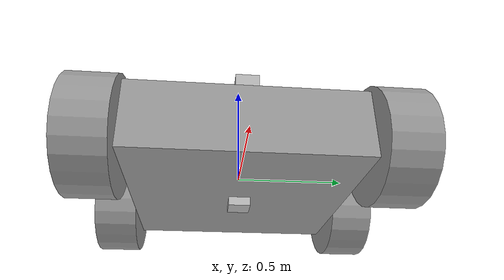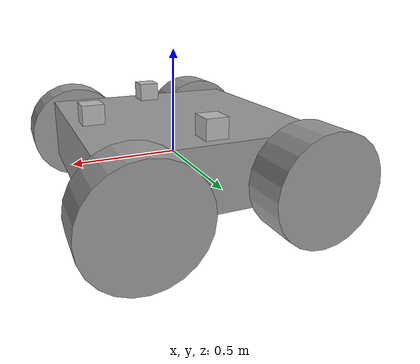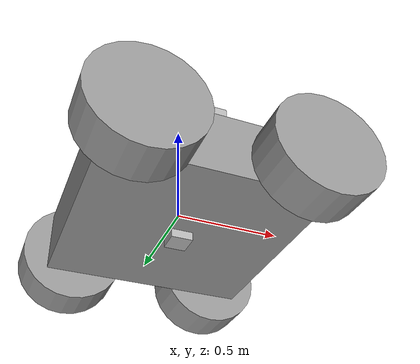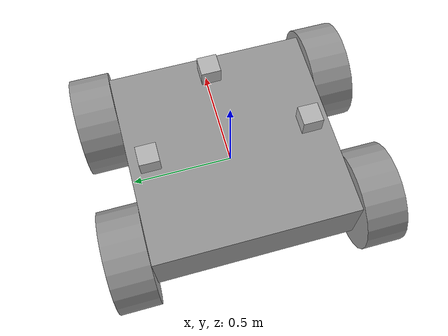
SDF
<?xml version='1.0'?>
<sdf version='1.6'>
  <model name='jhonny5'>
    <link name='base_frame'>
      <pose frame=''>0 5e-06 0.04 0 -0 0</pose>
      <inertial>
        <mass>20</mass>
        <inertia>
          <ixx>0</ixx>
          <ixy>0</ixy>
          <ixz>0</ixz>
          <iyy>0</iyy>
          <iyz>0</iyz>
          <izz>0</izz>
        </inertia>
        <pose frame=''>0 0 0 0 -0 0</pose>
      </inertial>
      <gravity>1</gravity>
      <self_collide>0</self_collide>
      <kinematic>0</kinematic>
      <visual name='visual'>
        <pose frame=''>0 0 0 0 -0 0</pose>
        <geometry>
          <box>
            <size>1 1 0.3</size>
          </box>
        </geometry>
        <material>
          <lighting>1</lighting>
          <script>
            <uri>file://media/materials/scripts/gazebo.material</uri>
            <name>Gazebo/Grey</name>
          </script>
          <ambient>0.3 0.3 0.3 1</ambient>
          <diffuse>0.7 0.7 0.7 1</diffuse>
          <specular>0.01 0.01 0.01 1</specular>
          <emissive>0 0 0 1</emissive>
          <shader type='vertex'>
            <normal_map>__default__</normal_map>
          </shader>
        </material>
        <cast_shadows>1</cast_shadows>
        <transparency>0</transparency>
      </visual>
      <collision name='collision'>
        <laser_retro>0</laser_retro>
        <max_contacts>10</max_contacts>
        <pose frame=''>0 0 0 0 -0 0</pose>
        <geometry>
          <box>
            <size>1 1 0.3</size>
          </box>
        </geometry>
        <surface>
          <friction>
            <ode>
              <mu>1</mu>
              <mu2>1</mu2>
              <fdir1>0 0 0</fdir1>
              <slip1>0</slip1>
              <slip2>0</slip2>
            </ode>
            <torsional>
              <coefficient>1</coefficient>
              <patch_radius>0</patch_radius>
              <surface_radius>0</surface_radius>
              <use_patch_radius>1</use_patch_radius>
              <ode>
                <slip>0</slip>
              </ode>
            </torsional>
          </friction>
          <bounce>
            <restitution_coefficient>0</restitution_coefficient>
            <threshold>1e+06</threshold>
          </bounce>
          <contact>
            <collide_without_contact>0</collide_without_contact>
            <collide_without_contact_bitmask>1</collide_without_contact_bitmask>
            <collide_bitmask>1</collide_bitmask>
            <ode>
              <soft_cfm>0</soft_cfm>
              <soft_erp>0.2</soft_erp>
              <kp>1e+13</kp>
              <kd>1</kd>
              <max_vel>0.01</max_vel>
              <min_depth>0</min_depth>
            </ode>
            <bullet>
              <split_impulse>1</split_impulse>
              <split_impulse_penetration_threshold>-0.01</split_impulse_penetration_threshold>
              <soft_cfm>0</soft_cfm>
              <soft_erp>0.2</soft_erp>
              <kp>1e+13</kp>
              <kd>1</kd>
            </bullet>
          </contact>
        </surface>
      </collision>
    </link>
    <link name='front_left_wheel'>
      <pose frame=''>0.375 0.6 0 1.5707 -0 0</pose>
      <inertial>
        <mass>0.01</mass>
        <inertia>
          <ixx>0</ixx>
          <ixy>0</ixy>
          <ixz>0</ixz>
          <iyy>0</iyy>
          <iyz>0</iyz>
          <izz>0</izz>
        </inertia>
        <pose frame=''>0 0 0 0 -0 0</pose>
      </inertial>
      <gravity>1</gravity>
      <self_collide>0</self_collide>
      <kinematic>0</kinematic>
      <visual name='visual'>
        <pose frame=''>0 0 0 0 -0 0</pose>
        <geometry>
          <cylinder>
            <radius>0.25</radius>
            <length>0.2</length>
          </cylinder>
        </geometry>
        <material>
          <lighting>1</lighting>
          <script>
            <uri>file://media/materials/scripts/gazebo.material</uri>
            <name>Gazebo/Grey</name>
          </script>
          <ambient>0.3 0.3 0.3 1</ambient>
          <diffuse>0.7 0.7 0.7 1</diffuse>
          <specular>0.01 0.01 0.01 1</specular>
          <emissive>0 0 0 1</emissive>
          <shader type='vertex'>
            <normal_map>__default__</normal_map>
          </shader>
        </material>
        <cast_shadows>1</cast_shadows>
        <transparency>0</transparency>
      </visual>
      <collision name='collision'>
        <laser_retro>0</laser_retro>
        <max_contacts>10</max_contacts>
        <pose frame=''>0 0 0 0 -0 0</pose>
        <geometry>
          <cylinder>
            <radius>0.25</radius>
            <length>0.2</length>
          </cylinder>
        </geometry>
        <surface>
          <friction>
            <ode>
              <mu>1</mu>
              <mu2>1</mu2>
              <fdir1>0 0 0</fdir1>
              <slip1>0</slip1>
              <slip2>0</slip2>
            </ode>
            <torsional>
              <coefficient>1</coefficient>
              <patch_radius>0</patch_radius>
              <surface_radius>0</surface_radius>
              <use_patch_radius>1</use_patch_radius>
              <ode>
                <slip>0</slip>
              </ode>
            </torsional>
          </friction>
          <bounce>
            <restitution_coefficient>0</restitution_coefficient>
            <threshold>1e+06</threshold>
          </bounce>
          <contact>
            <collide_without_contact>0</collide_without_contact>
            <collide_without_contact_bitmask>1</collide_without_contact_bitmask>
            <collide_bitmask>1</collide_bitmask>
            <ode>
              <soft_cfm>0</soft_cfm>
              <soft_erp>0.2</soft_erp>
              <kp>1e+13</kp>
              <kd>1</kd>
              <max_vel>0.01</max_vel>
              <min_depth>0</min_depth>
            </ode>
            <bullet>
              <split_impulse>1</split_impulse>
              <split_impulse_penetration_threshold>-0.01</split_impulse_penetration_threshold>
              <soft_cfm>0</soft_cfm>
              <soft_erp>0.2</soft_erp>
              <kp>1e+13</kp>
              <kd>1</kd>
            </bullet>
          </contact>
        </surface>
      </collision>
    </link>
    <link name='front_right_wheel'>
      <pose frame=''>0.375 -0.6 0 1.5707 -0 0</pose>
      <inertial>
        <mass>0.01</mass>
        <inertia>
          <ixx>0</ixx>
          <ixy>0</ixy>
          <ixz>0</ixz>
          <iyy>0</iyy>
          <iyz>0</iyz>
          <izz>0</izz>
        </inertia>
        <pose frame=''>0 0 0 0 -0 0</pose>
      </inertial>
      <self_collide>0</self_collide>
      <kinematic>0</kinematic>
      <gravity>1</gravity>
      <visual name='visual'>
        <pose frame=''>0 0 0 0 -0 0</pose>
        <geometry>
          <cylinder>
            <radius>0.25</radius>
            <length>0.2</length>
          </cylinder>
        </geometry>
        <material>
          <lighting>1</lighting>
          <script>
            <uri>file://media/materials/scripts/gazebo.material</uri>
            <name>Gazebo/Grey</name>
          </script>
          <ambient>0.3 0.3 0.3 1</ambient>
          <diffuse>0.7 0.7 0.7 1</diffuse>
          <specular>0.01 0.01 0.01 1</specular>
          <emissive>0 0 0 1</emissive>
          <shader type='vertex'>
            <normal_map>__default__</normal_map>
          </shader>
        </material>
        <cast_shadows>1</cast_shadows>
        <transparency>0</transparency>
      </visual>
      <collision name='collision'>
        <laser_retro>0</laser_retro>
        <max_contacts>10</max_contacts>
        <pose frame=''>0 0 0 0 -0 0</pose>
        <geometry>
          <cylinder>
            <radius>0.25</radius>
            <length>0.2</length>
          </cylinder>
        </geometry>
        <surface>
          <friction>
            <ode>
              <mu>1</mu>
              <mu2>1</mu2>
              <fdir1>0 0 0</fdir1>
              <slip1>0</slip1>
              <slip2>0</slip2>
            </ode>
            <torsional>
              <coefficient>1</coefficient>
              <patch_radius>0</patch_radius>
              <surface_radius>0</surface_radius>
              <use_patch_radius>1</use_patch_radius>
              <ode>
                <slip>0</slip>
              </ode>
            </torsional>
          </friction>
          <bounce>
            <restitution_coefficient>0</restitution_coefficient>
            <threshold>1e+06</threshold>
          </bounce>
          <contact>
            <collide_without_contact>0</collide_without_contact>
            <collide_without_contact_bitmask>1</collide_without_contact_bitmask>
            <collide_bitmask>1</collide_bitmask>
            <ode>
              <soft_cfm>0</soft_cfm>
              <soft_erp>0.2</soft_erp>
              <kp>1e+13</kp>
              <kd>1</kd>
              <max_vel>0.01</max_vel>
              <min_depth>0</min_depth>
            </ode>
            <bullet>
              <split_impulse>1</split_impulse>
              <split_impulse_penetration_threshold>-0.01</split_impulse_penetration_threshold>
              <soft_cfm>0</soft_cfm>
              <soft_erp>0.2</soft_erp>
              <kp>1e+13</kp>
              <kd>1</kd>
            </bullet>
          </contact>
        </surface>
      </collision>
    </link>
    <link name='back_left_wheel'>
      <pose frame=''>-0.375 0.6 0 1.5707 -0 0</pose>
      <inertial>
        <mass>0.01</mass>
        <inertia>
          <ixx>0</ixx>
          <ixy>0</ixy>
          <ixz>0</ixz>
          <iyy>0</iyy>
          <iyz>0</iyz>
          <izz>0</izz>
        </inertia>
        <pose frame=''>0 0 0 0 -0 0</pose>
      </inertial>
      <self_collide>0</self_collide>
      <kinematic>0</kinematic>
      <gravity>1</gravity>
      <visual name='visual'>
        <pose frame=''>0 0 0 0 -0 0</pose>
        <geometry>
          <cylinder>
            <radius>0.25</radius>
            <length>0.2</length>
          </cylinder>
        </geometry>
        <material>
          <lighting>1</lighting>
          <script>
            <uri>file://media/materials/scripts/gazebo.material</uri>
            <name>Gazebo/Grey</name>
          </script>
          <ambient>0.3 0.3 0.3 1</ambient>
          <diffuse>0.7 0.7 0.7 1</diffuse>
          <specular>0.01 0.01 0.01 1</specular>
          <emissive>0 0 0 1</emissive>
          <shader type='vertex'>
            <normal_map>__default__</normal_map>
          </shader>
        </material>
        <cast_shadows>1</cast_shadows>
        <transparency>0</transparency>
      </visual>
      <collision name='collision'>
        <laser_retro>0</laser_retro>
        <max_contacts>10</max_contacts>
        <pose frame=''>0 0 0 0 -0 0</pose>
        <geometry>
          <cylinder>
            <radius>0.25</radius>
            <length>0.2</length>
          </cylinder>
        </geometry>
        <surface>
          <friction>
            <ode>
              <mu>1</mu>
              <mu2>1</mu2>
              <fdir1>0 0 0</fdir1>
              <slip1>0</slip1>
              <slip2>0</slip2>
            </ode>
            <torsional>
              <coefficient>1</coefficient>
              <patch_radius>0</patch_radius>
              <surface_radius>0</surface_radius>
              <use_patch_radius>1</use_patch_radius>
              <ode>
                <slip>0</slip>
              </ode>
            </torsional>
          </friction>
          <bounce>
            <restitution_coefficient>0</restitution_coefficient>
            <threshold>1e+06</threshold>
          </bounce>
          <contact>
            <collide_without_contact>0</collide_without_contact>
            <collide_without_contact_bitmask>1</collide_without_contact_bitmask>
            <collide_bitmask>1</collide_bitmask>
            <ode>
              <soft_cfm>0</soft_cfm>
              <soft_erp>0.2</soft_erp>
              <kp>1e+13</kp>
              <kd>1</kd>
              <max_vel>0.01</max_vel>
              <min_depth>0</min_depth>
            </ode>
            <bullet>
              <split_impulse>1</split_impulse>
              <split_impulse_penetration_threshold>-0.01</split_impulse_penetration_threshold>
              <soft_cfm>0</soft_cfm>
              <soft_erp>0.2</soft_erp>
              <kp>1e+13</kp>
              <kd>1</kd>
            </bullet>
          </contact>
        </surface>
      </collision>
    </link>
    <link name='back_right_wheel'>
      <pose frame=''>-0.375 -0.6 0 1.5707 -0 0</pose>
      <inertial>
        <mass>0.01</mass>
        <inertia>
          <ixx>0</ixx>
          <ixy>0</ixy>
          <ixz>0</ixz>
          <iyy>0</iyy>
          <iyz>0</iyz>
          <izz>0</izz>
        </inertia>
        <pose frame=''>0 0 0 0 -0 0</pose>
      </inertial>
      <self_collide>0</self_collide>
      <kinematic>0</kinematic>
      <gravity>1</gravity>
      <visual name='visual'>
        <pose frame=''>0 0 0 0 -0 0</pose>
        <geometry>
          <cylinder>
            <radius>0.25</radius>
            <length>0.2</length>
          </cylinder>
        </geometry>
        <material>
          <lighting>1</lighting>
          <script>
            <uri>file://media/materials/scripts/gazebo.material</uri>
            <name>Gazebo/Grey</name>
          </script>
          <ambient>0.3 0.3 0.3 1</ambient>
          <diffuse>0.7 0.7 0.7 1</diffuse>
          <specular>0.01 0.01 0.01 1</specular>
          <emissive>0 0 0 1</emissive>
          <shader type='vertex'>
            <normal_map>__default__</normal_map>
          </shader>
        </material>
        <cast_shadows>1</cast_shadows>
        <transparency>0</transparency>
      </visual>
      <collision name='collision'>
        <laser_retro>0</laser_retro>
        <max_contacts>10</max_contacts>
        <pose frame=''>0 0 0 0 -0 0</pose>
        <geometry>
          <cylinder>
            <radius>0.25</radius>
            <length>0.2</length>
          </cylinder>
        </geometry>
        <surface>
          <friction>
            <ode>
              <mu>1</mu>
              <mu2>1</mu2>
              <fdir1>0 0 0</fdir1>
              <slip1>0</slip1>
              <slip2>0</slip2>
            </ode>
            <torsional>
              <coefficient>1</coefficient>
              <patch_radius>0</patch_radius>
              <surface_radius>0</surface_radius>
              <use_patch_radius>1</use_patch_radius>
              <ode>
                <slip>0</slip>
              </ode>
            </torsional>
          </friction>
          <bounce>
            <restitution_coefficient>0</restitution_coefficient>
            <threshold>1e+06</threshold>
          </bounce>
          <contact>
            <collide_without_contact>0</collide_without_contact>
            <collide_without_contact_bitmask>1</collide_without_contact_bitmask>
            <collide_bitmask>1</collide_bitmask>
            <ode>
              <soft_cfm>0</soft_cfm>
              <soft_erp>0.2</soft_erp>
              <kp>1e+13</kp>
              <kd>1</kd>
              <max_vel>0.01</max_vel>
              <min_depth>0</min_depth>
            </ode>
            <bullet>
              <split_impulse>1</split_impulse>
              <split_impulse_penetration_threshold>-0.01</split_impulse_penetration_threshold>
              <soft_cfm>0</soft_cfm>
              <soft_erp>0.2</soft_erp>
              <kp>1e+13</kp>
              <kd>1</kd>
            </bullet>
          </contact>
        </surface>
      </collision>
    </link>
    <model name='ray_camera'>
      <link name='link'>
        <pose frame=''>0 0 0 1.5707 -0 0</pose>
        <visual name='visual'>
          <geometry>
            <box>
              <size>0.1 0.1 0.1</size>
            </box>
          </geometry>
        </visual>
        <sensor name='sensor' type='ray'>
          <ray>
            <scan>
              <horizontal>
                <samples>32</samples>
                <resolution>1</resolution>
                <min_angle>-0.1</min_angle>
                <max_angle>0.25</max_angle>
              </horizontal>
            </scan>
            <range>
              <min>0.05</min>
              <max>70</max>
              <resolution>0.02</resolution>
            </range>
          </ray>
          <update_rate>30</update_rate>
          <visualize>true</visualize>
          <plugin name="gazebo_ros_head_hokuyo_controller" filename="libgazebo_ros_laser.so">
            <topicName>/jhonny5/laser/scan</topicName>
            <frameName>link</frameName>
          </plugin>
        </sensor>
      </link>
      <pose frame=''>0.4 0 0.23 0 -0 0</pose>
    </model>
    <model name='ray_camera_left'>
      <link name='link'>
        <pose frame=''>0 0 0 1.5707 -0 0</pose>
        <visual name='visual'>
          <geometry>
            <box>
              <size>0.1 0.1 0.1</size>
            </box>
          </geometry>
        </visual>
        <sensor name='sensor' type='ray'>
          <ray>
            <scan>
              <horizontal>
                <samples>32</samples>
                <resolution>1</resolution>
                <min_angle>-0.1</min_angle>
                <max_angle>0.25</max_angle>
              </horizontal>
            </scan>
            <range>
              <min>0.05</min>
              <max>70</max>
              <resolution>0.02</resolution>
            </range>
          </ray>
          <update_rate>30</update_rate>
          <visualize>true</visualize>
          <plugin name="gazebo_ros_head_hokuyo_controller" filename="libgazebo_ros_laser.so">
            <topicName>/jhonny5/laser/scan_left</topicName>
            <frameName>link</frameName>
          </plugin>
        </sensor>
      </link>
      <pose frame=''>0 0.4 0.23 0 0 1.5707</pose>
    </model>
    <model name='ray_camera_right'>
      <link name='link'>
        <pose frame=''>0 0 0 1.5707 -0 0</pose>
        <visual name='visual'>
          <geometry>
            <box>
              <size>0.1 0.1 0.1</size>
            </box>
          </geometry>
        </visual>
        <sensor name='sensor' type='ray'>
          <ray>
            <scan>
              <horizontal>
                <samples>32</samples>
                <resolution>1</resolution>
                <min_angle>-0.1</min_angle>
                <max_angle>0.25</max_angle>
              </horizontal>
            </scan>
            <range>
              <min>0.05</min>
              <max>70</max>
              <resolution>0.02</resolution>
            </range>
          </ray>
          <update_rate>30</update_rate>
          <visualize>true</visualize>
          <plugin name="gazebo_ros_head_hokuyo_controller" filename="libgazebo_ros_laser.so">
            <topicName>/jhonny5/laser/scan_right</topicName>
            <frameName>link</frameName>
          </plugin>
        </sensor>
      </link>
      <pose frame=''>0 -0.4 0.23 0 0 -1.5707</pose>
    </model>
    <model name='img_camera'>
      <link name='camera_link'>
        <gravity>0</gravity>
        <pose frame=''>0 0 0 1.5707 -0 0</pose>
        <visual name='visual'>
          <geometry>
            <box>
              <size>0.1 0.1 0.1</size>
            </box>
          </geometry>
        </visual>
        <sensor name='sensor' type='camera'>
          <horizontal_fov>1.3962634</horizontal_fov>
          <image>
            <width>800</width>
            <height>800</height>
            <format>R8G8B8</format>
          </image>
          <clip>
            <near>0.02</near>
            <far>300</far>
          </clip>
          <update_rate>30</update_rate>
          <visualize>true</visualize>
          <plugin name="camera_controller" filename="libgazebo_ros_camera.so">
            <alwaysOn>true</alwaysOn>
            <updateRate>0.0</updateRate>
            <cameraName>/jhonny5/camera/img_scan</cameraName>
            <imageTopicName>image_raw</imageTopicName>
            <cameraInfoTopicName>camera_info</cameraInfoTopicName>
            <frameName>camera_link</frameName>
            <hackBaseline>0.07</hackBaseline>
            <distortionK1>0.0</distortionK1>
            <distortionK2>0.0</distortionK2>
            <distortionK3>0.0</distortionK3>
            <distortionT1>0.0</distortionT1>
            <distortionT2>0.0</distortionT2>
          </plugin>
        </sensor>
      </link>
      <pose frame=''>0 0.0 -0.1 0 1.5707 0</pose>
    </model>
    <joint name='front_left_hinge' type='revolute'>
      <parent>base_frame</parent>
      <child>front_left_wheel</child>
      <pose frame=''>0 0 0 0 -0 0</pose>
      <axis>
        <xyz>0 0 1</xyz>
        <use_parent_model_frame>0</use_parent_model_frame>
        <limit>
          <lower>-1.79769e+308</lower>
          <upper>1.79769e+308</upper>
          <effort>-1</effort>
          <velocity>-1</velocity>
        </limit>
        <dynamics>
          <spring_reference>0</spring_reference>
          <spring_stiffness>0</spring_stiffness>
          <damping>0</damping>
        </dynamics>
      </axis>
      <physics>
        <ode>
          <limit>
            <cfm>0</cfm>
            <erp>0.2</erp>
          </limit>
          <suspension>
            <cfm>0</cfm>
            <erp>0.2</erp>
          </suspension>
        </ode>
      </physics>
    </joint>
    <joint name='front_right_hinge' type='revolute'>
      <parent>base_frame</parent>
      <child>front_right_wheel</child>
      <pose frame=''>0 0 0 0 -0 0</pose>
      <axis>
        <xyz>-0 -0 -1</xyz>
        <use_parent_model_frame>0</use_parent_model_frame>
        <limit>
          <lower>-1.79769e+308</lower>
          <upper>1.79769e+308</upper>
          <effort>-1</effort>
          <velocity>-1</velocity>
        </limit>
        <dynamics>
          <spring_reference>0</spring_reference>
          <spring_stiffness>0</spring_stiffness>
          <damping>0</damping>
        </dynamics>
      </axis>
      <physics>
        <ode>
          <limit>
            <cfm>0</cfm>
            <erp>0.2</erp>
          </limit>
          <suspension>
            <cfm>0</cfm>
            <erp>0.2</erp>
          </suspension>
        </ode>
      </physics>
    </joint>
    <joint name='back_left_hinge' type='revolute'>
      <parent>base_frame</parent>
      <child>back_left_wheel</child>
      <pose frame=''>0 0 0 0 -0 0</pose>
      <axis>
        <xyz>0 0 1</xyz>
        <use_parent_model_frame>0</use_parent_model_frame>
        <limit>
          <lower>-1.79769e+308</lower>
          <upper>1.79769e+308</upper>
          <effort>-1</effort>
          <velocity>-1</velocity>
        </limit>
        <dynamics>
          <spring_reference>0</spring_reference>
          <spring_stiffness>0</spring_stiffness>
          <damping>0</damping>
        </dynamics>
      </axis>
      <physics>
        <ode>
          <limit>
            <cfm>0</cfm>
            <erp>0.2</erp>
          </limit>
          <suspension>
            <cfm>0</cfm>
            <erp>0.2</erp>
          </suspension>
        </ode>
      </physics>
    </joint>
    <joint name='back_right_hinge' type='revolute'>
      <parent>base_frame</parent>
      <child>back_right_wheel</child>
      <pose frame=''>0 0 0 0 -0 0</pose>
      <axis>
        <xyz>-0 -0 -1</xyz>
        <use_parent_model_frame>0</use_parent_model_frame>
        <limit>
          <lower>-1.79769e+308</lower>
          <upper>1.79769e+308</upper>
          <effort>-1</effort>
          <velocity>-1</velocity>
        </limit>
        <dynamics>
          <spring_reference>0</spring_reference>
          <spring_stiffness>0</spring_stiffness>
          <damping>0</damping>
        </dynamics>
      </axis>
      <physics>
        <ode>
          <limit>
            <cfm>0</cfm>
            <erp>0.2</erp>
          </limit>
          <suspension>
            <cfm>0</cfm>
            <erp>0.2</erp>
          </suspension>
        </ode>
      </physics>
    </joint>
    <joint name='fixed_ray_sensor_joint' type='fixed'>
      <parent>base_frame</parent>
      <child>ray_camera::link</child>
      <pose frame=''>0 0 0 0 -0 0</pose>
      <physics>
        <ode>
          <limit>
            <cfm>0</cfm>
            <erp>0.2</erp>
          </limit>
          <suspension>
            <cfm>0</cfm>
            <erp>0.2</erp>
          </suspension>
        </ode>
      </physics>
    </joint>
    <joint name='fixed_left_ray_sensor_joint' type='fixed'>
      <parent>base_frame</parent>
      <child>ray_camera_left::link</child>
      <pose frame=''>0 0 0 0 -0 0</pose>
      <physics>
        <ode>
          <limit>
            <cfm>0</cfm>
            <erp>0.2</erp>
          </limit>
          <suspension>
            <cfm>0</cfm>
            <erp>0.2</erp>
          </suspension>
        </ode>
      </physics>
    </joint>
    <joint name='fixed_right_ray_sensor_joint' type='fixed'>
      <parent>base_frame</parent>
      <child>ray_camera_right::link</child>
      <pose frame=''>0 0 0 0 -0 0</pose>
      <physics>
        <ode>
          <limit>
            <cfm>0</cfm>
            <erp>0.2</erp>
          </limit>
          <suspension>
            <cfm>0</cfm>
            <erp>0.2</erp>
          </suspension>
        </ode>
      </physics>
    </joint>
    <joint name='fixed_img_camera_joint' type='fixed'>
      <parent>base_frame</parent>
      <child>img_camera::camera_link</child>
      <pose frame=''>0 0 0 0 -0 0</pose>
      <physics>
        <ode>
          <limit>
            <cfm>0</cfm>
            <erp>0.2</erp>
          </limit>
          <suspension>
            <cfm>0</cfm>
            <erp>0.2</erp>
          </suspension>
        </ode>
      </physics>
    </joint>
    <plugin name="skid_steer_drive_controller" filename="libgazebo_ros_skid_steer_drive.so">
     <updateRate>100.0</updateRate>
     <leftFrontJoint>front_left_hinge</leftFrontJoint>
     <rightFrontJoint>front_right_hinge</rightFrontJoint>
     <leftRearJoint>back_left_hinge</leftRearJoint>
     <rightRearJoint>back_right_hinge</rightRearJoint>
     <wheelSeparation>1.2</wheelSeparation>
     <wheelDiameter>0.5</wheelDiameter>
     <MaxForce>5.0</MaxForce>
     <torque>200</torque>
     <commandTopic>cmd_vel</commandTopic>
     <robotBaseFrame>base_frame</robotBaseFrame>
     <odometryTopic>/jhonny5/odom</odometryTopic>
     <odometryFrame>odom</odometryFrame>
     <broadcastTF>1</broadcastTF>
   </plugin>
    <static>0</static>
    <allow_auto_disable>1</allow_auto_disable>
  </model>
</sdf>
